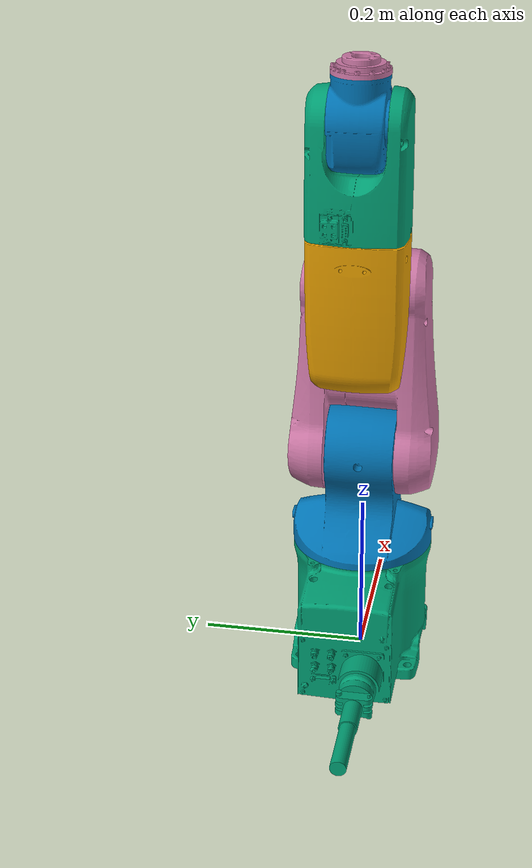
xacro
<?xml version="1.0"?>
<robot xmlns:xacro="http://ros.org/wiki/xacro" name="vp6242_robot">
	<!-- THE ROBOT -->
	<link name="world" />

	<!-- Arm file -->
	<xacro:include filename="$(find vp6242b_description)/urdf/vp6242.urdf.xacro" />
	<joint name="world_joint" type="fixed">
		<parent link="world" />
		<child link = "base_org" />
		<origin xyz="0.0 0.0 0.0" rpy="0.0 0.0 0.0" />
	</joint>

	<!-- ====== Gazebo Plugins ======= -->
	<gazebo>
		<plugin name="control" filename="libgazebo_ros_control.so"/>
	</gazebo>
</robot>

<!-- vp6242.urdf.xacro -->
<robot xmlns:xacro="http://ros.org/wiki/xacro" name="vp6242b">
  <!-- General properties -->
  <xacro:property name="deg2rad" value="${pi/180}"/>
  <xacro:property name="rad2deg" value="${180/pi}"/>
  <xacro:property name="mesh_path" value="package://vp6242b_description/meshes" />

  <!-- Joint properties -->
  <xacro:property name="default_joint_velocity" value="0.8" />
  <xacro:property name="default_joint_effort" value="10e3" />
  <xacro:property name="default_joint_damping" value="0.5" />
  <xacro:property name="default_joint_friction" value="0.06" />

  <xacro:property name="joint_1_min" value="${-90.0*deg2rad}" />
  <xacro:property name="joint_1_max" value="${90.0*deg2rad}" />
  <xacro:property name="joint_2_min" value="${-120.0*deg2rad}" />
  <xacro:property name="joint_2_max" value="${120.0*deg2rad}" />
  <xacro:property name="joint_3_min" value="${-160.0*deg2rad}" />
  <xacro:property name="joint_3_max" value="${1*deg2rad}" />
  <xacro:property name="joint_4_min" value="${-89.0*deg2rad}" />
  <xacro:property name="joint_4_max" value="${89.0*deg2rad}" />
  <xacro:property name="joint_5_min" value="${-120.0*deg2rad}" />
  <xacro:property name="joint_5_max" value="${120.0*deg2rad}" />
  <xacro:property name="joint_6_min" value="${-160.0*deg2rad}" />
  <xacro:property name="joint_6_max" value="${160.0*deg2rad}" />

  <!-- Some Userful Interial Macros -->
  <!-- Ref: https://github.com/uos/uos_tools/blob/fuerte/uos_common_urdf/common.xacro -->
  <xacro:macro name="box_inertial_with_origin" params="x y z mass *origin">
    <inertial>
      <mass value="${mass}" />
      <insert_block name="origin"/>
      <inertia ixx="${0.0833333 * mass * (y*y + z*z)}" ixy="0.0" ixz="0.0"
        iyy="${0.0833333 * mass * (x*x + z*z)}" iyz="0.0"
        izz="${0.0833333 * mass * (x*x + y*y)}" />
    </inertial>
  </xacro:macro>
  <xacro:macro name="sphere_inertial_with_origin" params="radius mass *origin">
    <inertial>
      <mass value="${mass}" />
      <insert_block name="origin" />
      <inertia ixx="${0.4 * mass * radius * radius}" ixy="0.0" ixz="0.0"
        iyy="${0.4 * mass * radius * radius}" iyz="0.0"
        izz="${0.4 * mass * radius * radius}" />
    </inertial>
  </xacro:macro>
  <xacro:macro name="cylinder_inertial_with_origin" params="radius length mass *origin">
    <inertial>
      <mass value="${mass}" />
      <insert_block name="origin" />
      <inertia ixx="${0.0833333 * mass * (3 * radius * radius + length * length)}" ixy="0.0" ixz="0.0"
        iyy="${0.0833333 * mass * (3 * radius * radius + length * length)}" iyz="0.0"
        izz="${0.5 * mass * radius * radius}" />
    </inertial>
  </xacro:macro>

  <!-- ========== Links =========== -->
  <link name="base_org"/>
  <link name="base_link">
    <visual>
       <geometry>
          <mesh filename="${mesh_path}/visual/base.dae"/>
       </geometry>
    </visual>
    <collision>
       <geometry>
          <mesh filename="${mesh_path}/collision/base.dae"/>
       </geometry>
    </collision>
    <xacro:box_inertial_with_origin x="0.2" y="0.155" z="0.155" mass="5">
      <origin xyz="-0.034692 -0.000668 -0.075958"/>
    </xacro:box_inertial_with_origin>
  </link>
  <link name="base_link_aux"/>
  <link name="link_1">
    <visual>
      <geometry>
         <mesh filename="${mesh_path}/visual/link1.dae"/>
      </geometry>
    </visual>
    <collision>
      <geometry>
        <mesh filename="${mesh_path}/collision/link1.dae"/>
      </geometry>
    </collision>
    <xacro:cylinder_inertial_with_origin radius="0.08" length="0.1" mass="4">
      <origin xyz="-0.000004 -0.059714 -0.000001"/>
    </xacro:cylinder_inertial_with_origin>
  </link>
  <link name="link_1_aux"/>
  <link name="link_2">
    <visual>
      <geometry>
         <mesh filename="${mesh_path}/visual/link2.dae"/>
      </geometry>
    </visual>
    <collision>
       <geometry>
          <mesh filename="${mesh_path}/collision/link2.dae"/>
       </geometry>
    </collision>
    <xacro:box_inertial_with_origin x="0.180" y="0.08" z="0.08" mass="2">
      <origin xyz="-0.133202 -0.003108 -0.000139"/>
    </xacro:box_inertial_with_origin>
  </link>
  <link name="link_2_aux"/>
  <link name="link_3">
    <visual>
      <geometry>
          <mesh filename="${mesh_path}/visual/link3.dae"/>
      </geometry>
    </visual>
    <collision>
        <geometry>
          <mesh filename="${mesh_path}/collision/link3.dae"/>
        </geometry>
    </collision>
    <xacro:box_inertial_with_origin x="0.06" y="0.06" z="0.180" mass="2">
      <origin xyz="0 0 0"/>
    </xacro:box_inertial_with_origin>
  </link>
  <link name="link_3_aux"/>
  <link name="link_4">
    <visual>
      <geometry>
          <mesh filename="${mesh_path}/visual/link4.dae"/>
      </geometry>
    </visual>
    <collision>
        <geometry>
          <mesh filename="${mesh_path}/collision/link4.dae"/>
        </geometry>
    </collision>
    <xacro:box_inertial_with_origin x="0.06" y="0.210" z="0.06" mass="2">
      <origin xyz="0 0 0"/>
    </xacro:box_inertial_with_origin>
  </link>
  <link name="link_4_aux"/>
  <link name="link_5">
    <visual>
      <geometry>
         <mesh filename="${mesh_path}/visual/link5.dae"/>
      </geometry>
    </visual>
    <collision>
       <geometry>
          <mesh filename="${mesh_path}/collision/link5.dae"/>
       </geometry>
    </collision>
    <xacro:sphere_inertial_with_origin radius="0.03" mass="0.5">
      <origin xyz="0 0 0"/>
    </xacro:sphere_inertial_with_origin>
  </link>
  <link name="link_5_aux"/>
  <link name="link_6">
    <visual>
      <geometry>
         <mesh filename="${mesh_path}/visual/wrist.dae"/>
      </geometry>
    </visual>
    <collision>
       <geometry>
          <mesh filename="${mesh_path}/collision/wrist.dae"/>
       </geometry>
    </collision>
    <xacro:cylinder_inertial_with_origin radius="0.04" length="0.08" mass="1.0">
      <origin xyz="0 0 0"/>
    </xacro:cylinder_inertial_with_origin>
  </link>

  <!-- ========== Joints =========== -->
  <joint name="base_org_to_base" type="fixed">
    <parent link="base_org"/>
    <child link="base_link"/>
    <origin xyz="0 0 0.155" rpy="0 0 0"/>
  </joint>
  <joint name="joint_1" type="revolute">
    <parent link="base_link"/>
    <child link="base_link_aux"/>
    <axis xyz="0 0 1"/>
    <origin xyz="0 0 0" rpy="0 0 0"/>
    <dynamics damping="${default_joint_damping}" friction="${default_joint_friction}"/>
    <limit effort="${default_joint_effort}" lower="${joint_1_min}" upper="${joint_1_max}" velocity="${default_joint_velocity}"/>
  </joint>
  <joint name="joint_1_aux" type="fixed">
    <parent link="base_link_aux"/>
    <child link="link_1"/>
    <origin xyz="0 0 0.125" rpy="${pi/2} 0 0"/>
  </joint>
  <joint name="joint_2" type="revolute">
    <parent link="link_1"/>
    <child link="link_1_aux"/>
    <axis xyz="0 0 1"/>
    <origin xyz="0 0 0" rpy="0 0 ${pi/2}"/>
    <dynamics damping="${default_joint_damping}" friction="${default_joint_friction}"/>
    <limit effort="${default_joint_effort}" lower="${joint_2_min}" upper="${joint_2_max}" velocity="${default_joint_velocity}"/>
  </joint>
  <joint name="joint_2_aux" type="fixed">
    <parent link="link_1_aux"/>
    <child link="link_2"/>
    <origin xyz="0.210 0 0" rpy="0 0 0"/>
  </joint>
  <joint name="joint_3" type="revolute">
    <parent link="link_2"/>
    <child link="link_2_aux"/>
    <axis xyz="0 0 1"/>
    <origin xyz="0 0 0" rpy="0 0 ${-pi/2}"/>
    <dynamics damping="${default_joint_damping}" friction="${default_joint_friction}"/>
    <limit effort="${default_joint_effort}" lower="${joint_3_min}" upper="${joint_3_max}" velocity="${default_joint_velocity}"/>
  </joint>
  <joint name="joint_3_aux" type="fixed">
    <parent link="link_2_aux"/>
    <child link="link_3"/>
    <origin xyz="-0.075 0 0" rpy="${-pi/2} 0 0"/>
  </joint>
  <joint name="joint_4" type="revolute">
    <parent link="link_3"/>
    <child link="link_3_aux"/>
    <axis xyz="0 0 1"/>
    <origin xyz="0 0 0.210" rpy="0 0 0"/>
    <dynamics damping="${default_joint_damping}" friction="${default_joint_friction}"/>
    <limit effort="${default_joint_effort}" lower="${joint_4_min}" upper="${joint_4_max}" velocity="${default_joint_velocity}"/>
  </joint>
  <joint name="joint_4_aux" type="fixed">
    <parent link="link_3_aux"/>
    <child link="link_4"/>
    <origin xyz="0 0 0" rpy="${pi/2} 0 0"/>
  </joint>
  <joint name="joint_5" type="revolute">
    <parent link="link_4"/>
    <child link="link_4_aux"/>
    <axis xyz="0 0 1"/>
    <origin xyz="0 0 0" rpy="0 0 0"/>
    <dynamics damping="${default_joint_damping}" friction="${default_joint_friction}"/>
    <limit effort="${default_joint_effort}" lower="${joint_5_min}" upper="${joint_5_max}" velocity="${default_joint_velocity}"/>
  </joint>
  <joint name="joint_5_aux" type="fixed">
    <parent link="link_4_aux"/>
    <child link="link_5"/>
    <origin xyz="0 0 0" rpy="${-pi/2} 0 0"/>
  </joint> -->
  <joint name="joint_6" type="revolute">
    <parent link="link_5"/>
    <child link="link_5_aux"/>
    <axis xyz="0 0 1"/>
    <origin xyz="0 0 0.07" rpy="0 0 0"/>
    <dynamics damping="${default_joint_damping}" friction="${default_joint_friction}"/>
    <limit effort="${default_joint_effort}" lower="${joint_6_min}" upper="${joint_6_max}" velocity="${default_joint_velocity}"/>
  </joint>
  <joint name="joint_6_aux" type="fixed">
    <parent link="link_5_aux"/>
    <child link="link_6"/>
    <origin xyz="0 0 0" rpy="0 0 0"/>
  </joint>

  <!-- ======= Transmission -======= -->
  <transmission name="tran_1">
    <type>transmission_interface/SimpleTransmission</type>
    <joint name="joint_1">
      <hardwareInterface>hardware_interface/EffortJointInterface</hardwareInterface>
    </joint>
    <actuator name="motor_1">
      <hardwareInterface>hardware_interface/EffortJointInterface</hardwareInterface>
      <mechanicalReduction>1</mechanicalReduction>
    </actuator>
  </transmission>
  <transmission name="tran_2">
    <type>transmission_interface/SimpleTransmission</type>
    <joint name="joint_2">
      <hardwareInterface>hardware_interface/EffortJointInterface</hardwareInterface>
    </joint>
    <actuator name="motor_2">
      <hardwareInterface>hardware_interface/EffortJointInterface</hardwareInterface>
      <mechanicalReduction>1</mechanicalReduction>
    </actuator>
  </transmission>
  <transmission name="tran_3">
    <type>transmission_interface/SimpleTransmission</type>
    <joint name="joint_3">
      <hardwareInterface>hardware_interface/EffortJointInterface</hardwareInterface>
    </joint>
    <actuator name="motor_3">
      <hardwareInterface>hardware_interface/EffortJointInterface</hardwareInterface>
      <mechanicalReduction>1</mechanicalReduction>
    </actuator>
  </transmission>
  <transmission name="tran_4">
    <type>transmission_interface/SimpleTransmission</type>
    <joint name="joint_4">
      <hardwareInterface>hardware_interface/EffortJointInterface</hardwareInterface>
    </joint>
    <actuator name="motor_4">
      <hardwareInterface>hardware_interface/EffortJointInterface</hardwareInterface>
      <mechanicalReduction>1</mechanicalReduction>
    </actuator>
  </transmission>
    <transmission name="tran_5">
    <type>transmission_interface/SimpleTransmission</type>
    <joint name="joint_5">
      <hardwareInterface>hardware_interface/EffortJointInterface</hardwareInterface>
    </joint>
    <actuator name="motor_5">
      <hardwareInterface>hardware_interface/EffortJointInterface</hardwareInterface>
      <mechanicalReduction>1</mechanicalReduction>
    </actuator>
  </transmission>
  <transmission name="tran_6">
    <type>transmission_interface/SimpleTransmission</type>
    <joint name="joint_6">
      <hardwareInterface>hardware_interface/EffortJointInterface</hardwareInterface>
    </joint>
    <actuator name="motor_6">
      <hardwareInterface>hardware_interface/EffortJointInterface</hardwareInterface>
      <mechanicalReduction>1</mechanicalReduction>
    </actuator>
  </transmission>

</robot>
